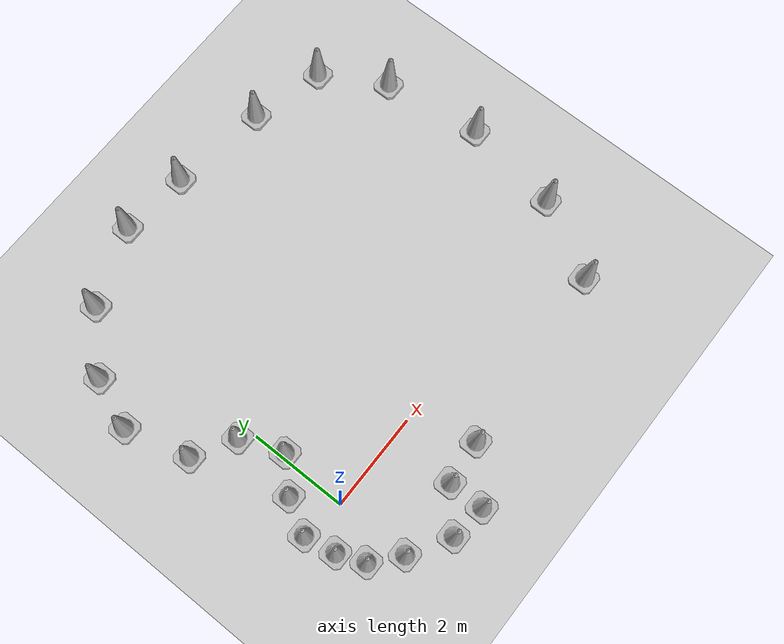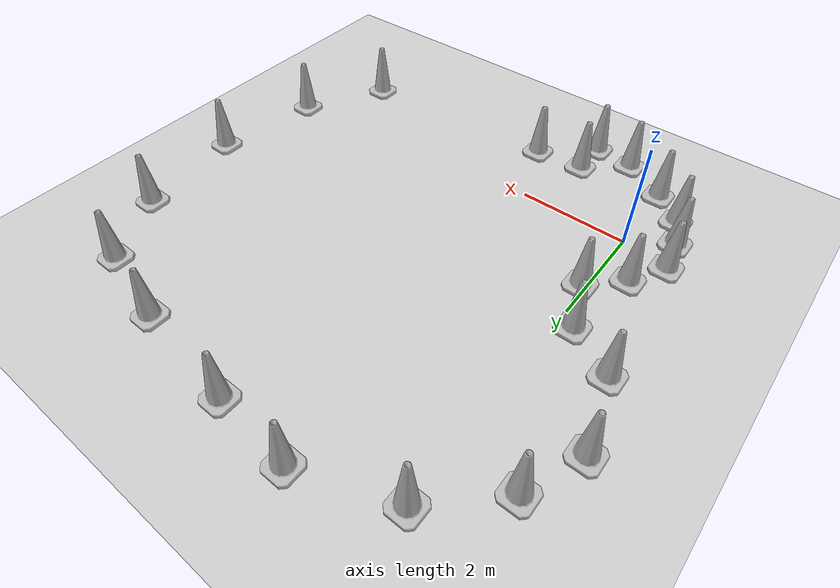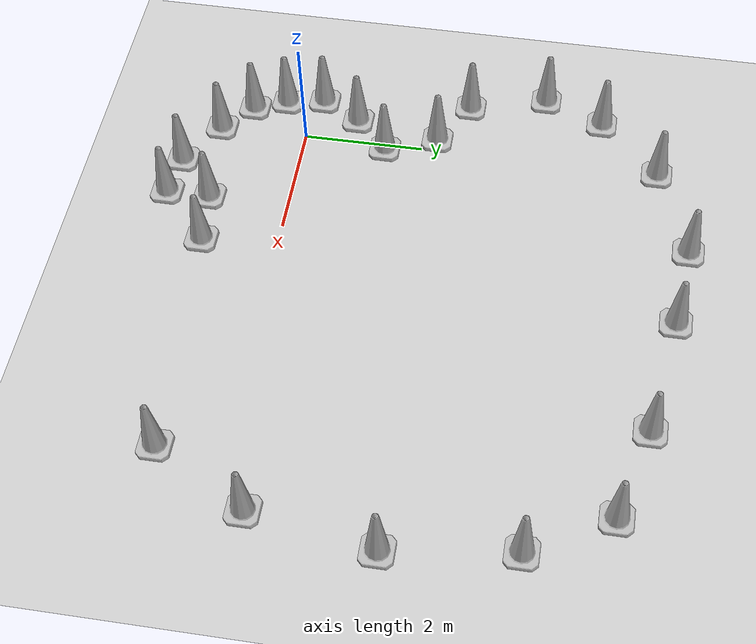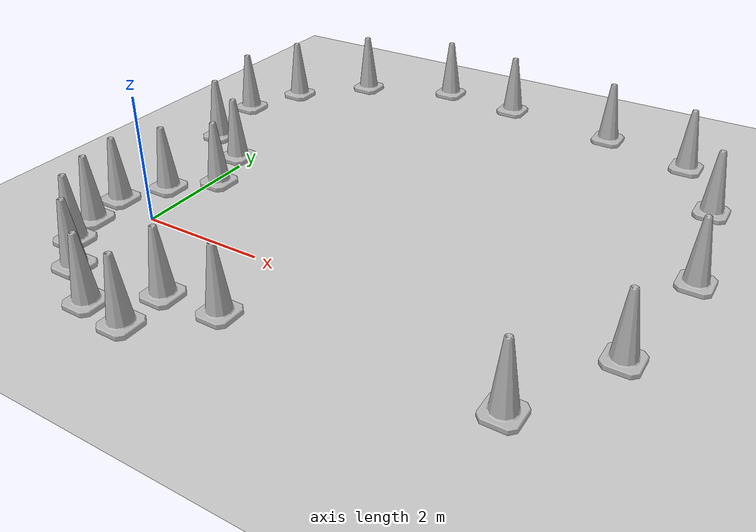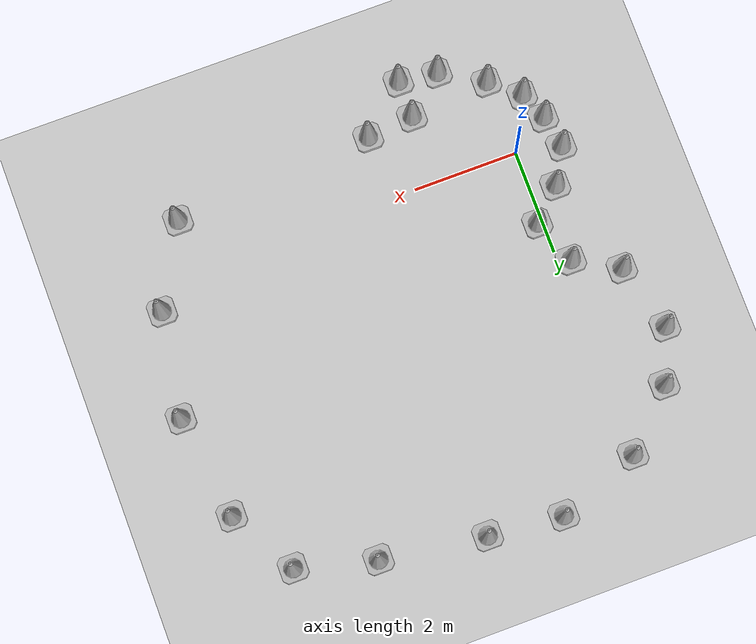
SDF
<sdf version="1.7">
 <world name="default">
  <light name="sun" type="directional">
   <pose>0 0 10 0 -0 0</pose>
   <diffuse>0.8 0.8 0.8 1</diffuse>
   <specular>0.2 0.2 0.2 1</specular>
   <attenuation>
    <range>1000</range>
    <constant>0.9</constant>
    <linear>0.01</linear>
    <quadratic>0.001</quadratic>
   </attenuation>
   <direction>-0.5 0.1 -0.9</direction>
   <spot><inner_angle>0</inner_angle><outer_angle>0</outer_angle><falloff>0</falloff></spot>
  </light>
  <model name="ground_plane">
   <static>1</static>
   <link name="link">
    <collision name="collision">
     <geometry><plane><normal>0 0 1</normal><size>100 100</size></plane></geometry>
     <surface>
      <contact><collide_bitmask>65535</collide_bitmask></contact>
      <friction><ode><mu>100</mu><mu2>50</mu2></ode></friction>
     </surface>
    </collision>
    <visual name="visual">
     <cast_shadows>0</cast_shadows>
     <geometry><plane><normal>0 0 1</normal><size>100 100</size></plane></geometry>
     <material>
      <script><uri>file://media/materials/scripts/gazebo.material</uri><name>Gazebo/Grey</name></script>
     </material>
    </visual>
   </link>
  </model>
  <gravity>0 0 -9.8</gravity>
  <magnetic_field>6e-06 2.3e-05 -4.2e-05</magnetic_field>
  <atmosphere type="adiabatic"/>
  <physics type="ode">
   <max_step_size>0.001</max_step_size>
   <real_time_factor>1</real_time_factor>
   <real_time_update_rate>1000</real_time_update_rate>
  </physics>
  <scene><ambient>0.4 0.4 0.4 1</ambient><background>0.7 0.7 0.7 1</background><shadows>1</shadows></scene>
  <audio><device>default</device></audio>
  <spherical_coordinates>
   <surface_model>EARTH_WGS84</surface_model>
   <latitude_deg>0</latitude_deg>
   <longitude_deg>0</longitude_deg>
   <elevation>0</elevation>
   <heading_deg>0</heading_deg>
  </spherical_coordinates>
  <model name="Construction Cone">
   <link name="link">
    <collision name="collision">
     <geometry>
      <mesh><scale>10 10 10</scale><uri>model://construction_cone/meshes/construction_cone.dae</uri></mesh>
     </geometry>
    </collision>
    <visual name="visual">
     <geometry>
      <mesh><scale>10 10 10</scale><uri>model://construction_cone/meshes/construction_cone.dae</uri></mesh>
     </geometry>
    </visual>
    <inertial>
     <inertia><ixx>1</ixx><ixy>0</ixy><ixz>0</ixz><iyy>1</iyy><iyz>0</iyz><izz>1</izz></inertia>
     <mass>1</mass>
    </inertial>
   </link>
   <pose>1.56576 -1.3258 -0 0 -1e-06 0</pose>
  </model>
  <model name="Construction Cone_0">
   <link name="link">
    <collision name="collision">
     <geometry>
      <mesh><scale>10 10 10</scale><uri>model://construction_cone/meshes/construction_cone.dae</uri></mesh>
     </geometry>
    </collision>
    <visual name="visual">
     <geometry>
      <mesh><scale>10 10 10</scale><uri>model://construction_cone/meshes/construction_cone.dae</uri></mesh>
     </geometry>
    </visual>
    <inertial>
     <inertia><ixx>1</ixx><ixy>0</ixy><ixz>0</ixz><iyy>1</iyy><iyz>0</iyz><izz>1</izz></inertia>
     <mass>1</mass>
    </inertial>
   </link>
   <pose>0.099487 1.38403 -0 0 -1e-06 0</pose>
  </model>
  <model name="Construction Cone_0_clone">
   <link name="link">
    <collision name="collision">
     <geometry>
      <mesh><scale>10 10 10</scale><uri>model://construction_cone/meshes/construction_cone.dae</uri></mesh>
     </geometry>
    </collision>
    <visual name="visual">
     <geometry>
      <mesh><scale>10 10 10</scale><uri>model://construction_cone/meshes/construction_cone.dae</uri></mesh>
     </geometry>
    </visual>
    <inertial>
     <inertia><ixx>1</ixx><ixy>0</ixy><ixz>0</ixz><iyy>1</iyy><iyz>0</iyz><izz>1</izz></inertia>
     <mass>1</mass>
    </inertial>
   </link>
   <pose>-0.469055 0.824229 -0 0 -0 0</pose>
  </model>
  <model name="Construction Cone_0_clone_0">
   <link name="link">
    <collision name="collision">
     <geometry>
      <mesh><scale>10 10 10</scale><uri>model://construction_cone/meshes/construction_cone.dae</uri></mesh>
     </geometry>
    </collision>
    <visual name="visual">
     <geometry>
      <mesh><scale>10 10 10</scale><uri>model://construction_cone/meshes/construction_cone.dae</uri></mesh>
     </geometry>
    </visual>
    <inertial>
     <inertia><ixx>1</ixx><ixy>0</ixy><ixz>0</ixz><iyy>1</iyy><iyz>0</iyz><izz>1</izz></inertia>
     <mass>1</mass>
    </inertial>
   </link>
   <pose>-0.841038 0.165058 -0 0 -1e-06 0</pose>
  </model>
  <model name="Construction Cone_0_clone_1">
   <link name="link">
    <collision name="collision">
     <geometry>
      <mesh><scale>10 10 10</scale><uri>model://construction_cone/meshes/construction_cone.dae</uri></mesh>
     </geometry>
    </collision>
    <visual name="visual">
     <geometry>
      <mesh><scale>10 10 10</scale><uri>model://construction_cone/meshes/construction_cone.dae</uri></mesh>
     </geometry>
    </visual>
    <inertial>
     <inertia><ixx>1</ixx><ixy>0</ixy><ixz>0</ixz><iyy>1</iyy><iyz>0</iyz><izz>1</izz></inertia>
     <mass>1</mass>
    </inertial>
   </link>
   <pose>-0.72562 -0.468807 -0 0 -0 0</pose>
  </model>
  <model name="Construction Cone_0_clone_2">
   <link name="link">
    <collision name="collision">
     <geometry>
      <mesh><scale>10 10 10</scale><uri>model://construction_cone/meshes/construction_cone.dae</uri></mesh>
     </geometry>
    </collision>
    <visual name="visual">
     <geometry>
      <mesh><scale>10 10 10</scale><uri>model://construction_cone/meshes/construction_cone.dae</uri></mesh>
     </geometry>
    </visual>
    <inertial>
     <inertia><ixx>1</ixx><ixy>0</ixy><ixz>0</ixz><iyy>1</iyy><iyz>0</iyz><izz>1</izz></inertia>
     <mass>1</mass>
    </inertial>
   </link>
   <pose>-0.507659 -1.00753 -0 0 -1e-06 0</pose>
  </model>
  <model name="Construction Cone_0_clone_3">
   <link name="link">
    <collision name="collision">
     <geometry>
      <mesh><scale>10 10 10</scale><uri>model://construction_cone/meshes/construction_cone.dae</uri></mesh>
     </geometry>
    </collision>
    <visual name="visual">
     <geometry>
      <mesh><scale>10 10 10</scale><uri>model://construction_cone/meshes/construction_cone.dae</uri></mesh>
     </geometry>
    </visual>
    <inertial>
     <inertia><ixx>1</ixx><ixy>0</ixy><ixz>0</ixz><iyy>1</iyy><iyz>0</iyz><izz>1</izz></inertia>
     <mass>1</mass>
    </inertial>
   </link>
   <pose>0.029127 -1.46915 -0 0 -0 0</pose>
  </model>
  <model name="Construction Cone_0_clone_4">
   <link name="link">
    <collision name="collision">
     <geometry>
      <mesh><scale>10 10 10</scale><uri>model://construction_cone/meshes/construction_cone.dae</uri></mesh>
     </geometry>
    </collision>
    <visual name="visual">
     <geometry>
      <mesh><scale>10 10 10</scale><uri>model://construction_cone/meshes/construction_cone.dae</uri></mesh>
     </geometry>
    </visual>
    <inertial>
     <inertia><ixx>1</ixx><ixy>0</ixy><ixz>0</ixz><iyy>1</iyy><iyz>0</iyz><izz>1</izz></inertia>
     <mass>1</mass>
    </inertial>
   </link>
   <pose>0.833865 -1.95359 -0 1e-06 -0 0</pose>
  </model>
  <model name="Construction Cone_0_clone_5">
   <link name="link">
    <collision name="collision">
     <geometry>
      <mesh><scale>10 10 10</scale><uri>model://construction_cone/meshes/construction_cone.dae</uri></mesh>
     </geometry>
    </collision>
    <visual name="visual">
     <geometry>
      <mesh><scale>10 10 10</scale><uri>model://construction_cone/meshes/construction_cone.dae</uri></mesh>
     </geometry>
    </visual>
    <inertial>
     <inertia><ixx>1</ixx><ixy>0</ixy><ixz>0</ixz><iyy>1</iyy><iyz>0</iyz><izz>1</izz></inertia>
     <mass>1</mass>
    </inertial>
   </link>
   <pose>2.46662 -1.23902 -0 0 -1e-06 0</pose>
  </model>
  <model name="Construction Cone_0_clone_6">
   <link name="link">
    <collision name="collision">
     <geometry>
      <mesh><scale>10 10 10</scale><uri>model://construction_cone/meshes/construction_cone.dae</uri></mesh>
     </geometry>
    </collision>
    <visual name="visual">
     <geometry>
      <mesh><scale>10 10 10</scale><uri>model://construction_cone/meshes/construction_cone.dae</uri></mesh>
     </geometry>
    </visual>
    <inertial>
     <inertia><ixx>1</ixx><ixy>0</ixy><ixz>0</ixz><iyy>1</iyy><iyz>0</iyz><izz>1</izz></inertia>
     <mass>1</mass>
    </inertial>
   </link>
   <pose>1.56922 -2.04402 -0 0 -0 0</pose>
  </model>
  <model name="Construction Cone_0_clone_7">
   <link name="link">
    <collision name="collision">
     <geometry>
      <mesh><scale>10 10 10</scale><uri>model://construction_cone/meshes/construction_cone.dae</uri></mesh>
     </geometry>
    </collision>
    <visual name="visual">
     <geometry>
      <mesh><scale>10 10 10</scale><uri>model://construction_cone/meshes/construction_cone.dae</uri></mesh>
     </geometry>
    </visual>
    <inertial>
     <inertia><ixx>1</ixx><ixy>0</ixy><ixz>0</ixz><iyy>1</iyy><iyz>0</iyz><izz>1</izz></inertia>
     <mass>1</mass>
    </inertial>
   </link>
   <pose>6.30956 -0.979471 -9e-06 2e-06 -0 0</pose>
  </model>
  <model name="Construction Cone_0_clone_8">
   <link name="link">
    <collision name="collision">
     <geometry>
      <mesh><scale>10 10 10</scale><uri>model://construction_cone/meshes/construction_cone.dae</uri></mesh>
     </geometry>
    </collision>
    <visual name="visual">
     <geometry>
      <mesh><scale>10 10 10</scale><uri>model://construction_cone/meshes/construction_cone.dae</uri></mesh>
     </geometry>
    </visual>
    <inertial>
     <inertia><ixx>1</ixx><ixy>0</ixy><ixz>0</ixz><iyy>1</iyy><iyz>0</iyz><izz>1</izz></inertia>
     <mass>1</mass>
    </inertial>
   </link>
   <pose>7.15372 0.53205 -5e-06 5e-06 1e-06 0</pose>
  </model>
  <model name="Construction Cone_0_clone_9">
   <link name="link">
    <collision name="collision">
     <geometry>
      <mesh><scale>10 10 10</scale><uri>model://construction_cone/meshes/construction_cone.dae</uri></mesh>
     </geometry>
    </collision>
    <visual name="visual">
     <geometry>
      <mesh><scale>10 10 10</scale><uri>model://construction_cone/meshes/construction_cone.dae</uri></mesh>
     </geometry>
    </visual>
    <inertial>
     <inertia><ixx>1</ixx><ixy>0</ixy><ixz>0</ixz><iyy>1</iyy><iyz>0</iyz><izz>1</izz></inertia>
     <mass>1</mass>
    </inertial>
   </link>
   <pose>7.48547 2.52308 -0 0 -0 0</pose>
  </model>
  <model name="Construction Cone_0_clone_10">
   <link name="link">
    <collision name="collision">
     <geometry>
      <mesh><scale>10 10 10</scale><uri>model://construction_cone/meshes/construction_cone.dae</uri></mesh>
     </geometry>
    </collision>
    <visual name="visual">
     <geometry>
      <mesh><scale>10 10 10</scale><uri>model://construction_cone/meshes/construction_cone.dae</uri></mesh>
     </geometry>
    </visual>
    <inertial>
     <inertia><ixx>1</ixx><ixy>0</ixy><ixz>0</ixz><iyy>1</iyy><iyz>0</iyz><izz>1</izz></inertia>
     <mass>1</mass>
    </inertial>
   </link>
   <pose>7.21373 4.51785 -1e-05 -1e-06 0 0</pose>
  </model>
  <model name="Construction Cone_0_clone_11">
   <link name="link">
    <collision name="collision">
     <geometry>
      <mesh><scale>10 10 10</scale><uri>model://construction_cone/meshes/construction_cone.dae</uri></mesh>
     </geometry>
    </collision>
    <visual name="visual">
     <geometry>
      <mesh><scale>10 10 10</scale><uri>model://construction_cone/meshes/construction_cone.dae</uri></mesh>
     </geometry>
    </visual>
    <inertial>
     <inertia><ixx>1</ixx><ixy>0</ixy><ixz>0</ixz><iyy>1</iyy><iyz>0</iyz><izz>1</izz></inertia>
     <mass>1</mass>
    </inertial>
   </link>
   <pose>6.49211 5.78789 -0 0 -1e-06 0</pose>
  </model>
  <model name="Construction Cone_0_clone_12">
   <link name="link">
    <collision name="collision">
     <geometry>
      <mesh><scale>10 10 10</scale><uri>model://construction_cone/meshes/construction_cone.dae</uri></mesh>
     </geometry>
    </collision>
    <visual name="visual">
     <geometry>
      <mesh><scale>10 10 10</scale><uri>model://construction_cone/meshes/construction_cone.dae</uri></mesh>
     </geometry>
    </visual>
    <inertial>
     <inertia><ixx>1</ixx><ixy>0</ixy><ixz>0</ixz><iyy>1</iyy><iyz>0</iyz><izz>1</izz></inertia>
     <mass>1</mass>
    </inertial>
   </link>
   <pose>4.99637 6.17897 0 -2e-06 -0 -0</pose>
  </model>
  <model name="Construction Cone_0_clone_13">
   <link name="link">
    <collision name="collision">
     <geometry>
      <mesh><scale>10 10 10</scale><uri>model://construction_cone/meshes/construction_cone.dae</uri></mesh>
     </geometry>
    </collision>
    <visual name="visual">
     <geometry>
      <mesh><scale>10 10 10</scale><uri>model://construction_cone/meshes/construction_cone.dae</uri></mesh>
     </geometry>
    </visual>
    <inertial>
     <inertia><ixx>1</ixx><ixy>0</ixy><ixz>0</ixz><iyy>1</iyy><iyz>0</iyz><izz>1</izz></inertia>
     <mass>1</mass>
    </inertial>
   </link>
   <pose>3 6.45984 -5e-06 4e-06 -1e-06 0</pose>
  </model>
  <model name="Construction Cone_0_clone_14">
   <link name="link">
    <collision name="collision">
     <geometry>
      <mesh><scale>10 10 10</scale><uri>model://construction_cone/meshes/construction_cone.dae</uri></mesh>
     </geometry>
    </collision>
    <visual name="visual">
     <geometry>
      <mesh><scale>10 10 10</scale><uri>model://construction_cone/meshes/construction_cone.dae</uri></mesh>
     </geometry>
    </visual>
    <inertial>
     <inertia><ixx>1</ixx><ixy>0</ixy><ixz>0</ixz><iyy>1</iyy><iyz>0</iyz><izz>1</izz></inertia>
     <mass>1</mass>
    </inertial>
   </link>
   <pose>1.57839 6.59521 -0 0 -1e-06 0</pose>
  </model>
  <model name="Construction Cone_0_clone_15">
   <link name="link">
    <collision name="collision">
     <geometry>
      <mesh><scale>10 10 10</scale><uri>model://construction_cone/meshes/construction_cone.dae</uri></mesh>
     </geometry>
    </collision>
    <visual name="visual">
     <geometry>
      <mesh><scale>10 10 10</scale><uri>model://construction_cone/meshes/construction_cone.dae</uri></mesh>
     </geometry>
    </visual>
    <inertial>
     <inertia><ixx>1</ixx><ixy>0</ixy><ixz>0</ixz><iyy>1</iyy><iyz>0</iyz><izz>1</izz></inertia>
     <mass>1</mass>
    </inertial>
   </link>
   <pose>-0 6 -0 0 -1e-06 0</pose>
  </model>
  <model name="Construction Cone_0_clone_16">
   <link name="link">
    <collision name="collision">
     <geometry>
      <mesh><scale>10 10 10</scale><uri>model://construction_cone/meshes/construction_cone.dae</uri></mesh>
     </geometry>
    </collision>
    <visual name="visual">
     <geometry>
      <mesh><scale>10 10 10</scale><uri>model://construction_cone/meshes/construction_cone.dae</uri></mesh>
     </geometry>
    </visual>
    <inertial>
     <inertia><ixx>1</ixx><ixy>0</ixy><ixz>0</ixz><iyy>1</iyy><iyz>0</iyz><izz>1</izz></inertia>
     <mass>1</mass>
    </inertial>
   </link>
   <pose>-1 5 -0 0 -1e-06 0</pose>
  </model>
  <model name="Construction Cone_0_clone_17">
   <link name="link">
    <collision name="collision">
     <geometry>
      <mesh><scale>10 10 10</scale><uri>model://construction_cone/meshes/construction_cone.dae</uri></mesh>
     </geometry>
    </collision>
    <visual name="visual">
     <geometry>
      <mesh><scale>10 10 10</scale><uri>model://construction_cone/meshes/construction_cone.dae</uri></mesh>
     </geometry>
    </visual>
    <inertial>
     <inertia><ixx>1</ixx><ixy>0</ixy><ixz>0</ixz><iyy>1</iyy><iyz>0</iyz><izz>1</izz></inertia>
     <mass>1</mass>
    </inertial>
   </link>
   <pose>-1.40794 4 -0 0 -1e-06 0</pose>
  </model>
  <model name="Construction Cone_0_clone_18">
   <link name="link">
    <collision name="collision">
     <geometry>
      <mesh><scale>10 10 10</scale><uri>model://construction_cone/meshes/construction_cone.dae</uri></mesh>
     </geometry>
    </collision>
    <visual name="visual">
     <geometry>
      <mesh><scale>10 10 10</scale><uri>model://construction_cone/meshes/construction_cone.dae</uri></mesh>
     </geometry>
    </visual>
    <inertial>
     <inertia><ixx>1</ixx><ixy>0</ixy><ixz>0</ixz><iyy>1</iyy><iyz>0</iyz><izz>1</izz></inertia>
     <mass>1</mass>
    </inertial>
   </link>
   <pose>-1.06139 2.71328 -0 0 -1e-06 0</pose>
  </model>
  <model name="Construction Cone_0_clone_19">
   <link name="link">
    <collision name="collision">
     <geometry>
      <mesh><scale>10 10 10</scale><uri>model://construction_cone/meshes/construction_cone.dae</uri></mesh>
     </geometry>
    </collision>
    <visual name="visual">
     <geometry>
      <mesh><scale>10 10 10</scale><uri>model://construction_cone/meshes/construction_cone.dae</uri></mesh>
     </geometry>
    </visual>
    <inertial>
     <inertia><ixx>1</ixx><ixy>0</ixy><ixz>0</ixz><iyy>1</iyy><iyz>0</iyz><izz>1</izz></inertia>
     <mass>1</mass>
    </inertial>
   </link>
   <pose>-0.236351 2.24212 -0 1e-06 -0 0</pose>
  </model>
 </world>
</sdf>
